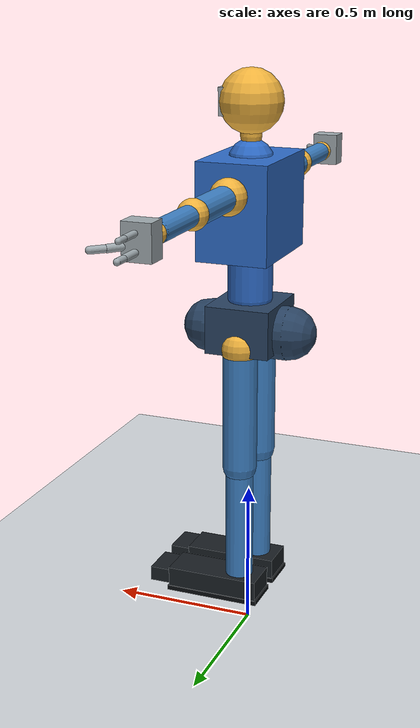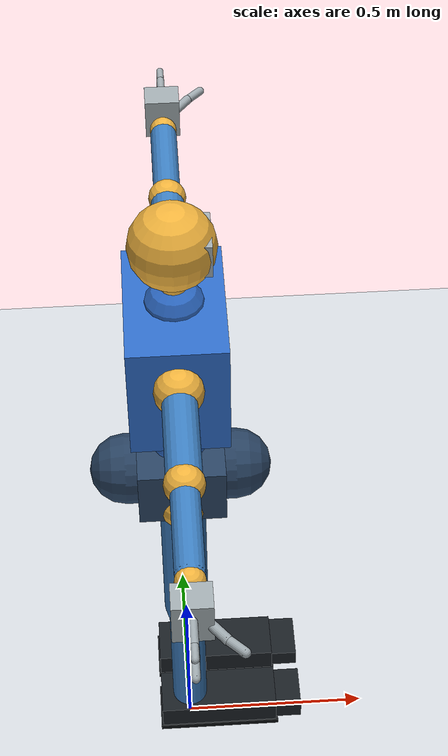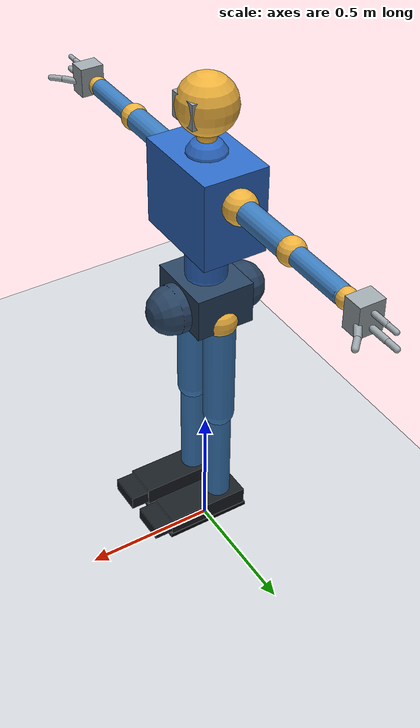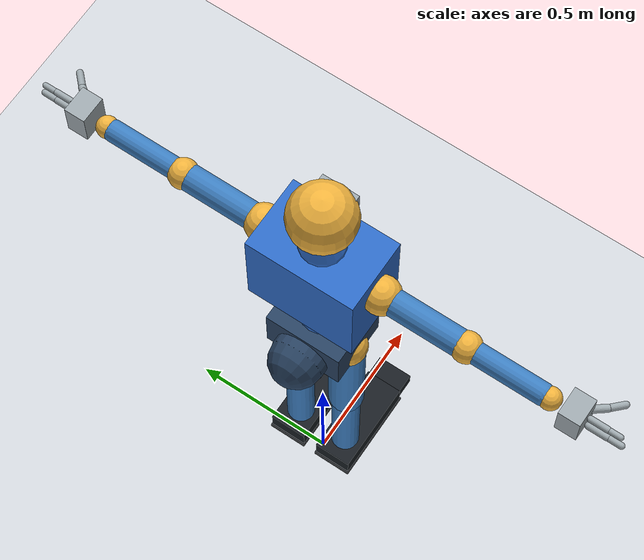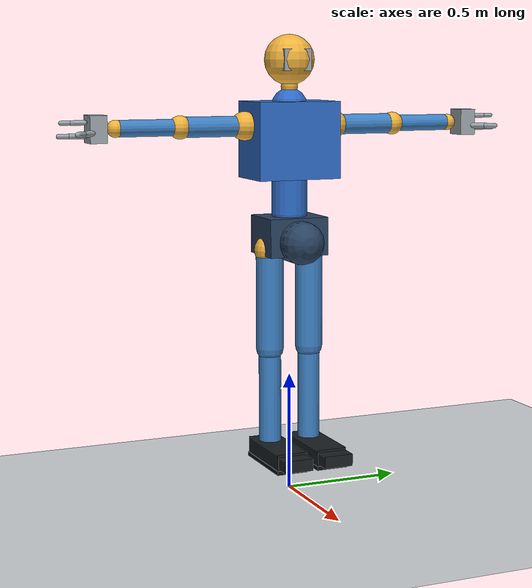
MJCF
<mujoco model="modular_humanoid">
  <!--
  inertiafromgeom="true": tự tính khối lượng/quán tính từ geom (density + hình học)
  autolimits="true": tự bật limited khi joint có range, khỏi phải khai báo limited="true" thủ công
  -->
  <compiler angle="radian" inertiafromgeom="true" autolimits="true" />
  <option timestep="0.005" gravity="0 0 -9.81" integrator="RK4" />
  <default>
    <!--
    Default toàn cục: damping/armature cho mọi joint (giảm dao động số),
    density geom 650 kg/m^3 (xấp xỉ mô cơ thể người), friction trượt/xoay/lăn
    -->
    <joint damping="1.0" armature="0.02" limited="true" />
    <geom density="650" friction="1.0 0.1 0.1" />
    <site size="0.01" group="3" />
    <default class="abdomen">
      <position kp="200" kv="20" forcerange="-160 160" />
    </default>
    <default class="neck">
      <position kp="40" kv="4" forcerange="-25 25" />
    </default>
    <default class="shoulder">
      <position kp="160" kv="12" forcerange="-90 90" />
    </default>
    <default class="forearm">
      <position kp="80" kv="6" forcerange="-45 45" />
    </default>
    <default class="elbow">
      <position kp="120" kv="9" forcerange="-70 70" />
    </default>
    <default class="wrist">
      <position kp="50" kv="4" forcerange="-25 25" />
    </default>
    <default class="finger">
      <position kp="6" kv="0.6" forcerange="-5 5" />
    </default>
    <default class="hip">
      <position kp="280" kv="16" forcerange="-220 220" />
    </default>
    <default class="knee">
      <position kp="320" kv="18" forcerange="-260 260" />
    </default>
    <default class="ankle">
      <position kp="120" kv="8" forcerange="-90 90" />
    </default>
    <default class="toe">
      <position kp="40" kv="3" forcerange="-30 30" />
    </default>
  </default>
  <asset>
    <material name="pelvis_mat" rgba="0.16 0.26 0.38 1" />
    <material name="torso_mat" rgba="0.18 0.42 0.78 1" />
    <material name="limb_mat" rgba="0.24 0.50 0.76 1" />
    <material name="joint_mat" rgba="0.94 0.70 0.24 1" />
    <material name="hand_mat" rgba="0.62 0.66 0.68 1" />
    <material name="foot_mat" rgba="0.10 0.12 0.14 1" />
    <material name="sole_mat" rgba="0.04 0.05 0.06 1" />
    <material name="floor_mat" rgba="0.82 0.84 0.86 1" />
  </asset>
  <worldbody>
    <light name="key_light" pos="1 -3 4" dir="-0.2 0.6 -1" diffuse="0.8 0.8 0.8" />
    <camera name="front" pos="2.2 -3.0 1.4" xyaxes="0.80 0.60 0 -0.24 0.32 0.92" />
    <geom name="floor" type="plane" size="4 4 0.05" material="floor_mat" />
    <body name="pelvis" pos="0 0 1.08">
      <freejoint name="root" />
      <geom name="pelvis_geom" type="capsule" fromto="-0.14 0 0 0.14 0 0" size="0.09" material="pelvis_mat" />
      <geom name="pelvis_core_geom" type="box" pos="0 0 0.02" size="0.11 0.13 0.08" material="pelvis_mat" />
      <site name="pelvis_imu" pos="0 0 0.02" size="0.01" rgba="1 0 0 0.6" />
      <site name="pelvis_root" pos="0 0 0" size="0.005" rgba="0 1 0 0.4" />
      <body name="waist_yaw" pos="0 0 0.12">
        <joint name="abdomen_yaw" type="hinge" axis="0 0 1" range="-0.65 0.65" />
        <inertial pos="0 0 0" mass="0.04" diaginertia="0.0002 0.0002 0.0002" />
        <body name="waist_roll">
          <joint name="abdomen_roll" type="hinge" axis="1 0 0" range="-0.45 0.45" />
          <inertial pos="0 0 0" mass="0.04" diaginertia="0.0002 0.0002 0.0002" />
          <body name="torso" pos="0 0 0.02">
            <joint name="abdomen_pitch" type="hinge" axis="0 1 0" range="-0.55 0.55" />
            <geom name="spine_geom" type="capsule" fromto="0 0 -0.03 0 0 0.42" size="0.075" material="torso_mat" />
            <geom name="chest_geom" type="box" pos="0 0 0.28" size="0.12 0.18 0.16" material="torso_mat" />
            <body name="neck_yaw" pos="0 0 0.50">
              <joint name="neck_yaw" type="hinge" axis="0 0 1" range="-0.9 0.9" />
              <geom name="neck_geom" type="capsule" fromto="0 0 0 0 0 0.09" size="0.035" material="joint_mat" contype="0" conaffinity="0" />
              <body name="head" pos="0 0 0.11">
                <joint name="neck_pitch" type="hinge" axis="0 1 0" range="-0.55 0.55" />
                <geom name="head_geom" type="sphere" size="0.105" material="joint_mat" />
                <geom name="face_geom" type="box" pos="0.055 0 0" size="0.035 0.06 0.045" material="hand_mat" contype="0" conaffinity="0" />
                <site name="head_imu" pos="0 0 0" size="0.008" rgba="1 0 0 0.6" />
                <camera name="head_cam" pos="0.10 0 0.02" xyaxes="0 -1 0 0 0 1" fovy="70" />
              </body>
            </body>
            <body name="right_shoulder_yaw" pos="0 -0.20 0.34">
              <joint name="shoulder_yaw_right" type="hinge" axis="0 0 1" range="-1.2 1.2" />
              <inertial pos="0 0 0" mass="0.03" diaginertia="0.00015 0.00015 0.00015" />
              <body name="right_shoulder_roll">
                <joint name="shoulder_roll_right" type="hinge" axis="1 0 0" range="-1.1 0.6" />
                <inertial pos="0 0 0" mass="0.03" diaginertia="0.00015 0.00015 0.00015" />
                <body name="right_upper_arm">
                  <joint name="shoulder_pitch_right" type="hinge" axis="0 1 0" range="-1.9 1.2" />
                  <geom name="right_shoulder_geom" type="sphere" size="0.06" material="joint_mat" contype="0" conaffinity="0" />
                  <geom name="right_upper_arm_geom" type="capsule" fromto="0 0 0 0 -0.28 0" size="0.042" material="limb_mat" />
                  <body name="right_forearm_yaw" pos="0 -0.28 0">
                    <joint name="forearm_yaw_right" type="hinge" axis="0 1 0" range="-1.3 1.3" />
                    <inertial pos="0 0 0" mass="0.02" diaginertia="0.0001 0.0001 0.0001" />
                    <body name="right_forearm">
                      <joint name="elbow_pitch_right" type="hinge" axis="0 1 0" range="-1.8 0.05" />
                      <geom name="right_elbow_geom" type="sphere" size="0.048" material="joint_mat" contype="0" conaffinity="0" />
                      <geom name="right_forearm_geom" type="capsule" fromto="0 0 0 0 -0.25 0" size="0.034" material="limb_mat" />
                      <body name="right_wrist_yaw" pos="0 -0.25 0">
                        <joint name="wrist_yaw_right" type="hinge" axis="0 0 1" range="-0.9 0.9" />
                        <inertial pos="0 0 0" mass="0.015" diaginertia="0.00008 0.00008 0.00008" />
                        <body name="right_wrist" pos="0 -0.02 0">
                          <joint name="wrist_pitch_right" type="hinge" axis="0 1 0" range="-0.8 0.8" />
                          <geom name="right_wrist_geom" type="sphere" size="0.035" material="joint_mat" contype="0" conaffinity="0" />
                          <body name="right_hand" pos="0 -0.055 0">
                            <geom name="right_palm_geom" type="box" pos="0 -0.025 0" size="0.045 0.035 0.055" material="hand_mat" />
                            <body name="right_thumb_base" pos="0.035 -0.045 -0.015">
                              <joint name="thumb_abduction_right" type="hinge" axis="0 0 1" range="-0.55 0.65" />
                              <geom name="right_thumb_base_geom" type="capsule" fromto="0 0 0 0.035 -0.045 0" size="0.012" material="hand_mat" />
                              <body name="right_thumb_tip" pos="0.035 -0.045 0">
                                <joint name="thumb_flexion_right" type="hinge" axis="0 1 0" range="-0.15 1.1" />
                                <geom name="right_thumb_tip_geom" type="capsule" fromto="0 0 0 0.035 -0.035 0" size="0.011" material="hand_mat" />
                              </body>
                            </body>
                            <body name="right_index_base" pos="0 -0.070 0.026">
                              <joint name="index_flexion_right" type="hinge" axis="1 0 0" range="-0.1 1.25" />
                              <geom name="right_index_base_geom" type="capsule" fromto="0 0 0 0 -0.055 0" size="0.010" material="hand_mat" />
                              <body name="right_index_tip" pos="0 -0.055 0">
                                <joint name="index_tip_right" type="hinge" axis="1 0 0" range="-0.1 1.0" />
                                <geom name="right_index_tip_geom" type="capsule" fromto="0 0 0 0 -0.040 0" size="0.009" material="hand_mat" />
                              </body>
                            </body>
                            <body name="right_middle_base" pos="0 -0.070 -0.026">
                              <joint name="middle_flexion_right" type="hinge" axis="1 0 0" range="-0.1 1.25" />
                              <geom name="right_middle_base_geom" type="capsule" fromto="0 0 0 0 -0.060 0" size="0.011" material="hand_mat" />
                              <body name="right_middle_tip" pos="0 -0.060 0">
                                <joint name="middle_tip_right" type="hinge" axis="1 0 0" range="-0.1 1.0" />
                                <geom name="right_middle_tip_geom" type="capsule" fromto="0 0 0 0 -0.045 0" size="0.010" material="hand_mat" />
                              </body>
                            </body>
                          </body>
                        </body>
                      </body>
                    </body>
                  </body>
                </body>
              </body>
            </body>
            <body name="left_shoulder_yaw" pos="0 0.20 0.34">
              <joint name="shoulder_yaw_left" type="hinge" axis="0 0 1" range="-1.2 1.2" />
              <inertial pos="0 0 0" mass="0.03" diaginertia="0.00015 0.00015 0.00015" />
              <body name="left_shoulder_roll">
                <joint name="shoulder_roll_left" type="hinge" axis="1 0 0" range="-0.6 1.1" />
                <inertial pos="0 0 0" mass="0.03" diaginertia="0.00015 0.00015 0.00015" />
                <body name="left_upper_arm">
                  <joint name="shoulder_pitch_left" type="hinge" axis="0 1 0" range="-1.9 1.2" />
                  <geom name="left_shoulder_geom" type="sphere" size="0.06" material="joint_mat" contype="0" conaffinity="0" />
                  <geom name="left_upper_arm_geom" type="capsule" fromto="0 0 0 0 0.28 0" size="0.042" material="limb_mat" />
                  <body name="left_forearm_yaw" pos="0 0.28 0">
                    <joint name="forearm_yaw_left" type="hinge" axis="0 1 0" range="-1.3 1.3" />
                    <inertial pos="0 0 0" mass="0.02" diaginertia="0.0001 0.0001 0.0001" />
                    <body name="left_forearm">
                      <joint name="elbow_pitch_left" type="hinge" axis="0 1 0" range="-1.8 0.05" />
                      <geom name="left_elbow_geom" type="sphere" size="0.048" material="joint_mat" contype="0" conaffinity="0" />
                      <geom name="left_forearm_geom" type="capsule" fromto="0 0 0 0 0.25 0" size="0.034" material="limb_mat" />
                      <body name="left_wrist_yaw" pos="0 0.25 0">
                        <joint name="wrist_yaw_left" type="hinge" axis="0 0 1" range="-0.9 0.9" />
                        <inertial pos="0 0 0" mass="0.015" diaginertia="0.00008 0.00008 0.00008" />
                        <body name="left_wrist" pos="0 0.02 0">
                          <joint name="wrist_pitch_left" type="hinge" axis="0 1 0" range="-0.8 0.8" />
                          <geom name="left_wrist_geom" type="sphere" size="0.035" material="joint_mat" contype="0" conaffinity="0" />
                          <body name="left_hand" pos="0 0.055 0">
                            <geom name="left_palm_geom" type="box" pos="0 0.025 0" size="0.045 0.035 0.055" material="hand_mat" />
                            <body name="left_thumb_base" pos="0.035 0.045 -0.015">
                              <joint name="thumb_abduction_left" type="hinge" axis="0 0 1" range="-0.65 0.55" />
                              <geom name="left_thumb_base_geom" type="capsule" fromto="0 0 0 0.035 0.045 0" size="0.012" material="hand_mat" />
                              <body name="left_thumb_tip" pos="0.035 0.045 0">
                                <joint name="thumb_flexion_left" type="hinge" axis="0 1 0" range="-0.15 1.1" />
                                <geom name="left_thumb_tip_geom" type="capsule" fromto="0 0 0 0.035 0.035 0" size="0.011" material="hand_mat" />
                              </body>
                            </body>
                            <body name="left_index_base" pos="0 0.070 0.026">
                              <joint name="index_flexion_left" type="hinge" axis="1 0 0" range="-0.1 1.25" />
                              <geom name="left_index_base_geom" type="capsule" fromto="0 0 0 0 0.055 0" size="0.010" material="hand_mat" />
                              <body name="left_index_tip" pos="0 0.055 0">
                                <joint name="index_tip_left" type="hinge" axis="1 0 0" range="-0.1 1.0" />
                                <geom name="left_index_tip_geom" type="capsule" fromto="0 0 0 0 0.040 0" size="0.009" material="hand_mat" />
                              </body>
                            </body>
                            <body name="left_middle_base" pos="0 0.070 -0.026">
                              <joint name="middle_flexion_left" type="hinge" axis="1 0 0" range="-0.1 1.25" />
                              <geom name="left_middle_base_geom" type="capsule" fromto="0 0 0 0 0.060 0" size="0.011" material="hand_mat" />
                              <body name="left_middle_tip" pos="0 0.060 0">
                                <joint name="middle_tip_left" type="hinge" axis="1 0 0" range="-0.1 1.0" />
                                <geom name="left_middle_tip_geom" type="capsule" fromto="0 0 0 0 0.045 0" size="0.010" material="hand_mat" />
                              </body>
                            </body>
                          </body>
                        </body>
                      </body>
                    </body>
                  </body>
                </body>
              </body>
            </body>
          </body>
        </body>
      </body>
      <body name="right_hip_yaw" pos="0 -0.09 -0.04">
        <joint name="hip_yaw_right" type="hinge" axis="0 0 1" range="-0.8 0.8" />
        <inertial pos="0 0 0" mass="0.05" diaginertia="0.00025 0.00025 0.00025" />
        <body name="right_hip_roll">
          <joint name="hip_roll_right" type="hinge" axis="1 0 0" range="-0.55 0.45" />
          <inertial pos="0 0 0" mass="0.05" diaginertia="0.00025 0.00025 0.00025" />
          <body name="right_thigh">
            <joint name="hip_pitch_right" type="hinge" axis="0 1 0" range="-1.25 1.0" />
            <geom name="right_hip_geom" type="sphere" size="0.065" material="joint_mat" contype="0" conaffinity="0" />
            <geom name="right_thigh_geom" type="capsule" fromto="0 0 0 0 0 -0.42" size="0.058" material="limb_mat" />
            <body name="right_shin" pos="0 0 -0.42">
              <joint name="knee_pitch_right" type="hinge" axis="0 1 0" range="-1.9 0.05" />
              <geom name="right_knee_geom" type="sphere" size="0.054" material="joint_mat" contype="0" conaffinity="0" />
              <geom name="right_shin_geom" type="capsule" fromto="0 0 0 0 0 -0.40" size="0.047" material="limb_mat" />
              <body name="right_ankle_roll" pos="0 0 -0.40">
                <joint name="ankle_roll_right" type="hinge" axis="1 0 0" range="-0.45 0.45" />
                <inertial pos="0 0 0" mass="0.03" diaginertia="0.00015 0.00015 0.00015" />
                <body name="right_foot">
                  <joint name="ankle_pitch_right" type="hinge" axis="0 1 0" range="-0.75 0.75" />
                  <geom name="right_ankle_geom" type="sphere" size="0.046" material="joint_mat" contype="0" conaffinity="0" />
                  <geom name="right_foot_geom" type="box" pos="0.08 0 -0.035" size="0.16 0.065 0.035" material="foot_mat" />
                  <geom name="right_sole_geom" type="box" pos="0.08 0 -0.076" size="0.165 0.068 0.008" material="sole_mat" />
                  <site name="right_ankle_force" pos="0 0 0" size="0.012" rgba="0 1 1 0.5" />
                  <site name="right_sole" pos="0.08 0 -0.084" size="0.165 0.068 0.005" type="box" rgba="0 1 1 0.2" />
                  <site name="right_heel" pos="-0.05 0 -0.076" size="0.012" rgba="1 1 0 0.5" />
                  <site name="right_toe_tip" pos="0.30 0 -0.035" size="0.012" rgba="1 1 0 0.5" />
                  <body name="right_toe" pos="0.22 0 -0.035">
                    <joint name="toe_pitch_right" type="hinge" axis="0 1 0" range="-0.35 0.55" />
                    <geom name="right_toe_geom" type="box" pos="0.035 0 0" size="0.055 0.062 0.025" material="foot_mat" />
                  </body>
                </body>
              </body>
            </body>
          </body>
        </body>
      </body>
      <body name="left_hip_yaw" pos="0 0.09 -0.04">
        <joint name="hip_yaw_left" type="hinge" axis="0 0 1" range="-0.8 0.8" />
        <inertial pos="0 0 0" mass="0.05" diaginertia="0.00025 0.00025 0.00025" />
        <body name="left_hip_roll">
          <joint name="hip_roll_left" type="hinge" axis="1 0 0" range="-0.45 0.55" />
          <inertial pos="0 0 0" mass="0.05" diaginertia="0.00025 0.00025 0.00025" />
          <body name="left_thigh">
            <joint name="hip_pitch_left" type="hinge" axis="0 1 0" range="-1.25 1.0" />
            <geom name="left_hip_geom" type="sphere" size="0.065" material="joint_mat" contype="0" conaffinity="0" />
            <geom name="left_thigh_geom" type="capsule" fromto="0 0 0 0 0 -0.42" size="0.058" material="limb_mat" />
            <body name="left_shin" pos="0 0 -0.42">
              <joint name="knee_pitch_left" type="hinge" axis="0 1 0" range="-1.9 0.05" />
              <geom name="left_knee_geom" type="sphere" size="0.054" material="joint_mat" contype="0" conaffinity="0" />
              <geom name="left_shin_geom" type="capsule" fromto="0 0 0 0 0 -0.40" size="0.047" material="limb_mat" />
              <body name="left_ankle_roll" pos="0 0 -0.40">
                <joint name="ankle_roll_left" type="hinge" axis="1 0 0" range="-0.45 0.45" />
                <inertial pos="0 0 0" mass="0.03" diaginertia="0.00015 0.00015 0.00015" />
                <body name="left_foot">
                  <joint name="ankle_pitch_left" type="hinge" axis="0 1 0" range="-0.75 0.75" />
                  <geom name="left_ankle_geom" type="sphere" size="0.046" material="joint_mat" contype="0" conaffinity="0" />
                  <geom name="left_foot_geom" type="box" pos="0.08 0 -0.035" size="0.16 0.065 0.035" material="foot_mat" />
                  <geom name="left_sole_geom" type="box" pos="0.08 0 -0.076" size="0.165 0.068 0.008" material="sole_mat" />
                  <site name="left_ankle_force" pos="0 0 0" size="0.012" rgba="0 1 1 0.5" />
                  <site name="left_sole" pos="0.08 0 -0.084" size="0.165 0.068 0.005" type="box" rgba="0 1 1 0.2" />
                  <site name="left_heel" pos="-0.05 0 -0.076" size="0.012" rgba="1 1 0 0.5" />
                  <site name="left_toe_tip" pos="0.30 0 -0.035" size="0.012" rgba="1 1 0 0.5" />
                  <body name="left_toe" pos="0.22 0 -0.035">
                    <joint name="toe_pitch_left" type="hinge" axis="0 1 0" range="-0.35 0.55" />
                    <geom name="left_toe_geom" type="box" pos="0.035 0 0" size="0.055 0.062 0.025" material="foot_mat" />
                  </body>
                </body>
              </body>
            </body>
          </body>
        </body>
      </body>
    </body>
  </worldbody>
  <contact>
    <exclude body1="pelvis" body2="right_thigh" />
    <exclude body1="pelvis" body2="left_thigh" />
    <exclude body1="pelvis" body2="torso" />
    <exclude body1="torso" body2="right_upper_arm" />
    <exclude body1="torso" body2="left_upper_arm" />
    <exclude body1="torso" body2="head" />
    <exclude body1="right_upper_arm" body2="right_forearm" />
    <exclude body1="left_upper_arm" body2="left_forearm" />
    <exclude body1="right_forearm" body2="right_wrist" />
    <exclude body1="left_forearm" body2="left_wrist" />
    <exclude body1="right_forearm" body2="right_hand" />
    <exclude body1="left_forearm" body2="left_hand" />
    <exclude body1="right_thigh" body2="right_foot" />
    <exclude body1="left_thigh" body2="left_foot" />
    <exclude body1="right_shin" body2="right_foot" />
    <exclude body1="left_shin" body2="left_foot" />
    <exclude body1="right_thigh" body2="left_thigh" />
    <exclude body1="right_shin" body2="left_shin" />
    <exclude body1="right_foot" body2="left_foot" />
    <exclude body1="right_toe" body2="left_toe" />
    <exclude body1="right_hand" body2="right_thigh" />
    <exclude body1="left_hand" body2="left_thigh" />
    <exclude body1="right_hand" body2="pelvis" />
    <exclude body1="left_hand" body2="pelvis" />
    <exclude body1="right_forearm" body2="right_thigh" />
    <exclude body1="left_forearm" body2="left_thigh" />
    <exclude body1="right_hand" body2="left_thigh" />
    <exclude body1="left_hand" body2="right_thigh" />
  </contact>
  <actuator>
    <position name="abdomen_yaw_motor" joint="abdomen_yaw" class="abdomen" ctrlrange="-0.65 0.65" />
    <position name="abdomen_roll_motor" joint="abdomen_roll" class="abdomen" ctrlrange="-0.45 0.45" />
    <position name="abdomen_pitch_motor" joint="abdomen_pitch" class="abdomen" ctrlrange="-0.55 0.55" />
    <position name="neck_yaw_motor" joint="neck_yaw" class="neck" ctrlrange="-0.9 0.9" />
    <position name="neck_pitch_motor" joint="neck_pitch" class="neck" ctrlrange="-0.55 0.55" />
    <position name="shoulder_yaw_right_motor" joint="shoulder_yaw_right" class="shoulder" ctrlrange="-1.2 1.2" />
    <position name="shoulder_roll_right_motor" joint="shoulder_roll_right" class="shoulder" ctrlrange="-1.1 0.6" />
    <position name="shoulder_pitch_right_motor" joint="shoulder_pitch_right" class="shoulder" ctrlrange="-1.9 1.2" />
    <position name="forearm_yaw_right_motor" joint="forearm_yaw_right" class="forearm" ctrlrange="-1.3 1.3" />
    <position name="elbow_pitch_right_motor" joint="elbow_pitch_right" class="elbow" ctrlrange="-1.8 0.05" />
    <position name="wrist_yaw_right_motor" joint="wrist_yaw_right" class="wrist" ctrlrange="-0.9 0.9" />
    <position name="wrist_pitch_right_motor" joint="wrist_pitch_right" class="wrist" ctrlrange="-0.8 0.8" />
    <position name="thumb_abduction_right_motor" joint="thumb_abduction_right" class="finger" ctrlrange="-0.55 0.65" />
    <position name="thumb_flexion_right_motor" joint="thumb_flexion_right" class="finger" ctrlrange="-0.15 1.1" />
    <position name="index_flexion_right_motor" joint="index_flexion_right" class="finger" ctrlrange="-0.1 1.25" />
    <position name="index_tip_right_motor" joint="index_tip_right" class="finger" ctrlrange="-0.1 1.0" />
    <position name="middle_flexion_right_motor" joint="middle_flexion_right" class="finger" ctrlrange="-0.1 1.25" />
    <position name="middle_tip_right_motor" joint="middle_tip_right" class="finger" ctrlrange="-0.1 1.0" />
    <position name="shoulder_yaw_left_motor" joint="shoulder_yaw_left" class="shoulder" ctrlrange="-1.2 1.2" />
    <position name="shoulder_roll_left_motor" joint="shoulder_roll_left" class="shoulder" ctrlrange="-0.6 1.1" />
    <position name="shoulder_pitch_left_motor" joint="shoulder_pitch_left" class="shoulder" ctrlrange="-1.9 1.2" />
    <position name="forearm_yaw_left_motor" joint="forearm_yaw_left" class="forearm" ctrlrange="-1.3 1.3" />
    <position name="elbow_pitch_left_motor" joint="elbow_pitch_left" class="elbow" ctrlrange="-1.8 0.05" />
    <position name="wrist_yaw_left_motor" joint="wrist_yaw_left" class="wrist" ctrlrange="-0.9 0.9" />
    <position name="wrist_pitch_left_motor" joint="wrist_pitch_left" class="wrist" ctrlrange="-0.8 0.8" />
    <position name="thumb_abduction_left_motor" joint="thumb_abduction_left" class="finger" ctrlrange="-0.65 0.55" />
    <position name="thumb_flexion_left_motor" joint="thumb_flexion_left" class="finger" ctrlrange="-0.15 1.1" />
    <position name="index_flexion_left_motor" joint="index_flexion_left" class="finger" ctrlrange="-0.1 1.25" />
    <position name="index_tip_left_motor" joint="index_tip_left" class="finger" ctrlrange="-0.1 1.0" />
    <position name="middle_flexion_left_motor" joint="middle_flexion_left" class="finger" ctrlrange="-0.1 1.25" />
    <position name="middle_tip_left_motor" joint="middle_tip_left" class="finger" ctrlrange="-0.1 1.0" />
    <position name="hip_yaw_right_motor" joint="hip_yaw_right" class="hip" ctrlrange="-0.8 0.8" />
    <position name="hip_roll_right_motor" joint="hip_roll_right" class="hip" ctrlrange="-0.55 0.45" />
    <position name="hip_pitch_right_motor" joint="hip_pitch_right" class="hip" ctrlrange="-1.25 1.0" />
    <position name="knee_pitch_right_motor" joint="knee_pitch_right" class="knee" ctrlrange="-1.9 0.05" />
    <position name="ankle_roll_right_motor" joint="ankle_roll_right" class="ankle" ctrlrange="-0.45 0.45" />
    <position name="ankle_pitch_right_motor" joint="ankle_pitch_right" class="ankle" ctrlrange="-0.75 0.75" />
    <position name="toe_pitch_right_motor" joint="toe_pitch_right" class="toe" ctrlrange="-0.35 0.55" />
    <position name="hip_yaw_left_motor" joint="hip_yaw_left" class="hip" ctrlrange="-0.8 0.8" />
    <position name="hip_roll_left_motor" joint="hip_roll_left" class="hip" ctrlrange="-0.45 0.55" />
    <position name="hip_pitch_left_motor" joint="hip_pitch_left" class="hip" ctrlrange="-1.25 1.0" />
    <position name="knee_pitch_left_motor" joint="knee_pitch_left" class="knee" ctrlrange="-1.9 0.05" />
    <position name="ankle_roll_left_motor" joint="ankle_roll_left" class="ankle" ctrlrange="-0.45 0.45" />
    <position name="ankle_pitch_left_motor" joint="ankle_pitch_left" class="ankle" ctrlrange="-0.75 0.75" />
    <position name="toe_pitch_left_motor" joint="toe_pitch_left" class="toe" ctrlrange="-0.35 0.55" />
  </actuator>
  <sensor>
    <gyro name="pelvis_gyro" site="pelvis_imu" />
    <accelerometer name="pelvis_accel" site="pelvis_imu" />
    <velocimeter name="pelvis_linvel" site="pelvis_imu" />
    <framequat name="pelvis_quat" objtype="site" objname="pelvis_imu" />
    <framepos name="pelvis_pos" objtype="site" objname="pelvis_imu" />
    <framelinvel name="pelvis_world_linvel" objtype="site" objname="pelvis_imu" />
    <frameangvel name="pelvis_world_angvel" objtype="site" objname="pelvis_imu" />
    <gyro name="head_gyro" site="head_imu" />
    <accelerometer name="head_accel" site="head_imu" />
    <framequat name="head_quat" objtype="site" objname="head_imu" />
    <force name="right_ankle_force" site="right_ankle_force" />
    <torque name="right_ankle_torque" site="right_ankle_force" />
    <touch name="right_sole_touch" site="right_sole" />
    <touch name="right_heel_touch" site="right_heel" />
    <touch name="right_toe_touch" site="right_toe_tip" />
    <framepos name="right_foot_pos" objtype="site" objname="right_sole" />
    <framelinvel name="right_foot_linvel" objtype="site" objname="right_sole" />
    <force name="left_ankle_force" site="left_ankle_force" />
    <torque name="left_ankle_torque" site="left_ankle_force" />
    <touch name="left_sole_touch" site="left_sole" />
    <touch name="left_heel_touch" site="left_heel" />
    <touch name="left_toe_touch" site="left_toe_tip" />
    <framepos name="left_foot_pos" objtype="site" objname="left_sole" />
    <framelinvel name="left_foot_linvel" objtype="site" objname="left_sole" />
  </sensor>
</mujoco>
